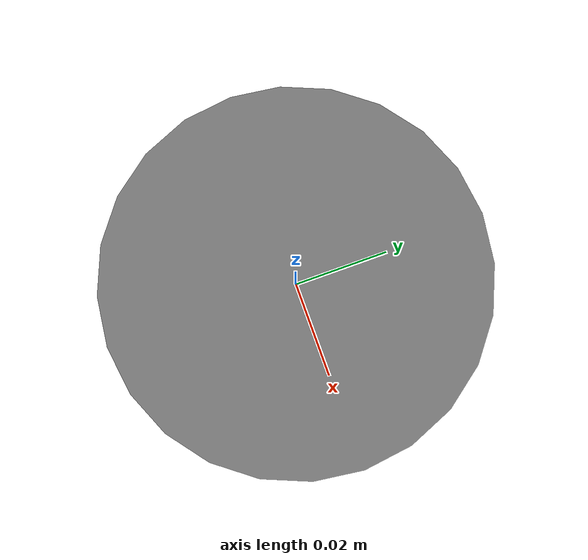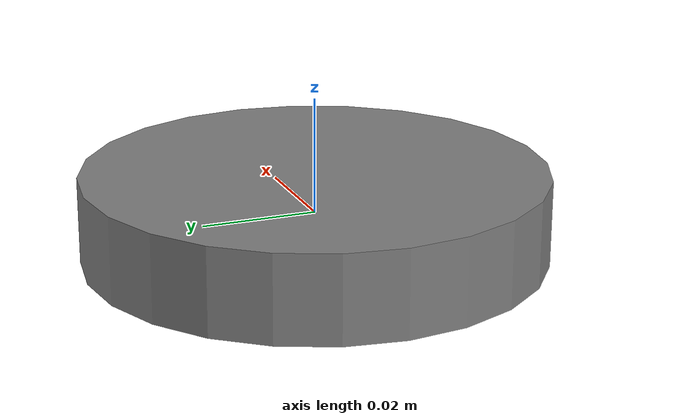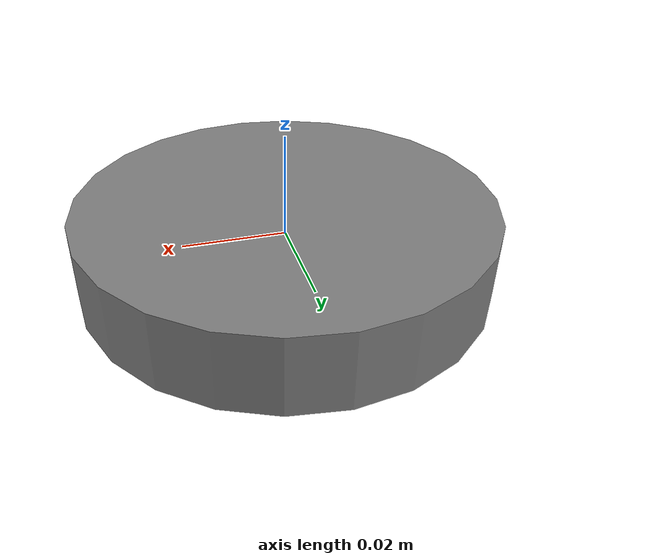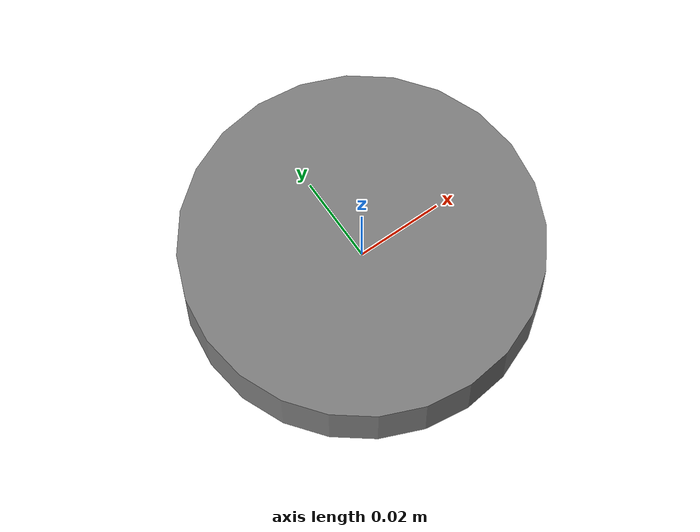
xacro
<?xml version="1.0"?>
<!-- TODO: load geometry from vacuum_gripper.yaml via xacro property -->
<robot xmlns:xacro="http://www.ros.org/wiki/xacro" name="vacuum_gripper">
  <link name="vacuum_base_link">
    <visual>
      <geometry>
        <cylinder radius="0.04" length="0.015"/>
      </geometry>
      <material name="grey"><color rgba="0.5 0.5 0.5 1"/></material>
    </visual>
    <collision>
      <geometry>
        <cylinder radius="0.04" length="0.015"/>
      </geometry>
    </collision>
  </link>
  <link name="vacuum_tip_link"/>
  <joint name="vacuum_tip_joint" type="fixed">
    <parent link="vacuum_base_link"/>
    <child link="vacuum_tip_link"/>
    <origin xyz="0 0 0.015" rpy="0 0 0"/>
  </joint>
</robot>
